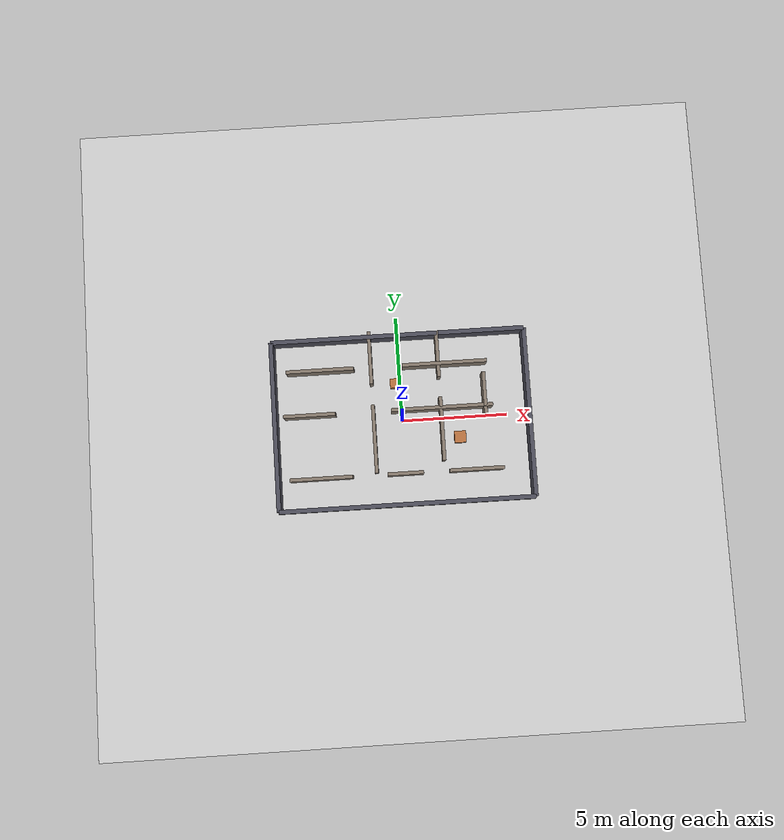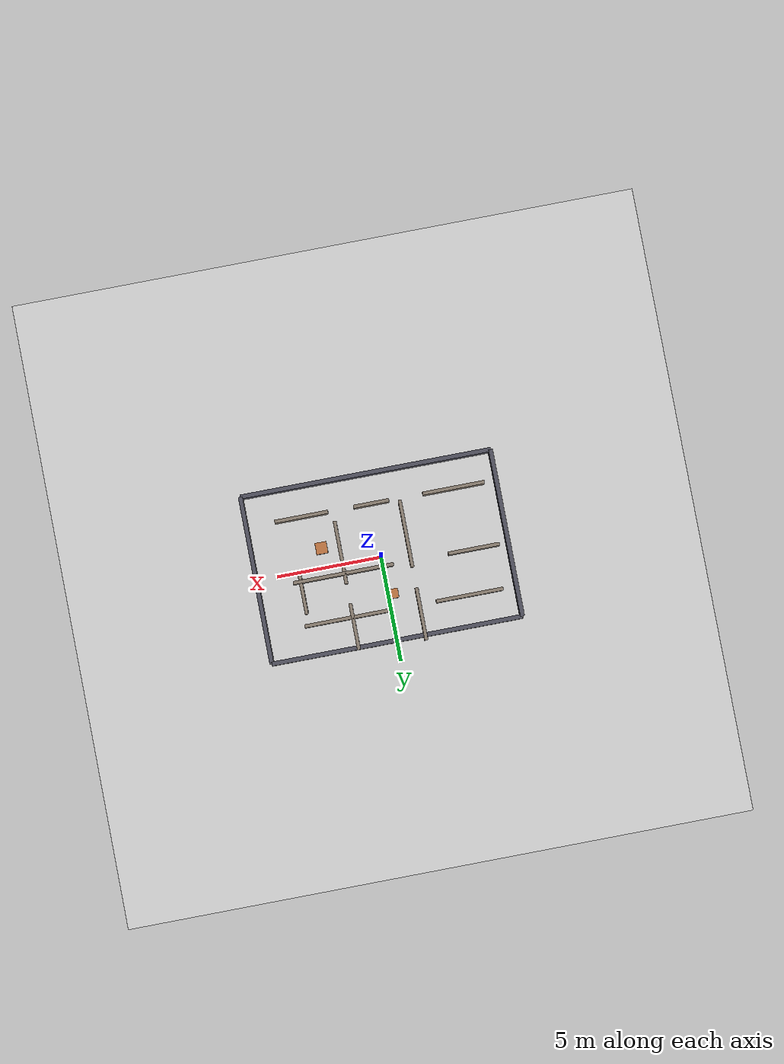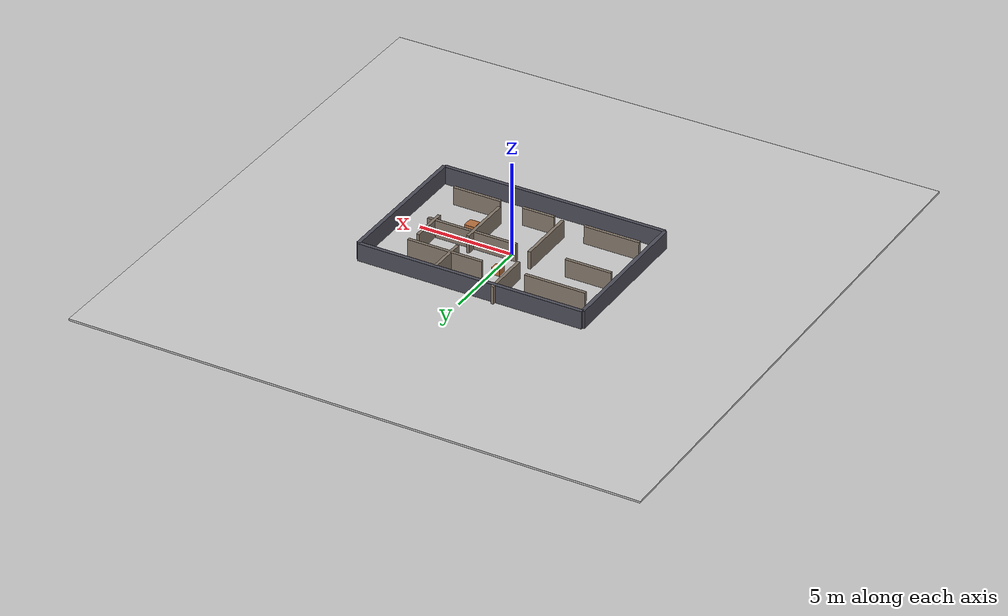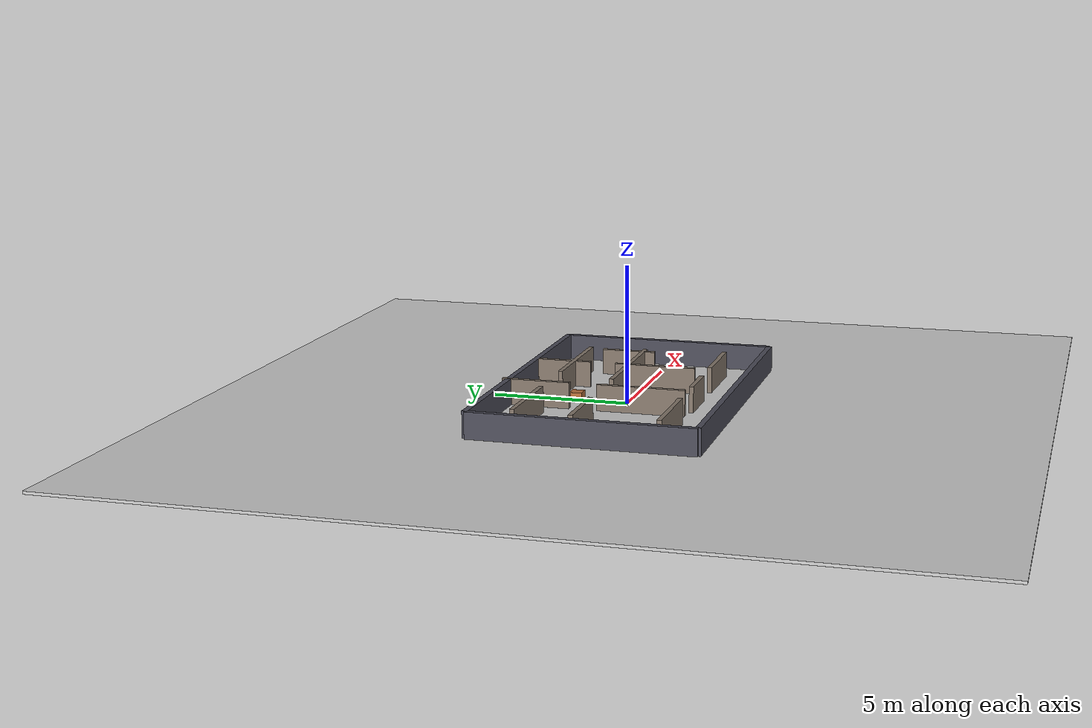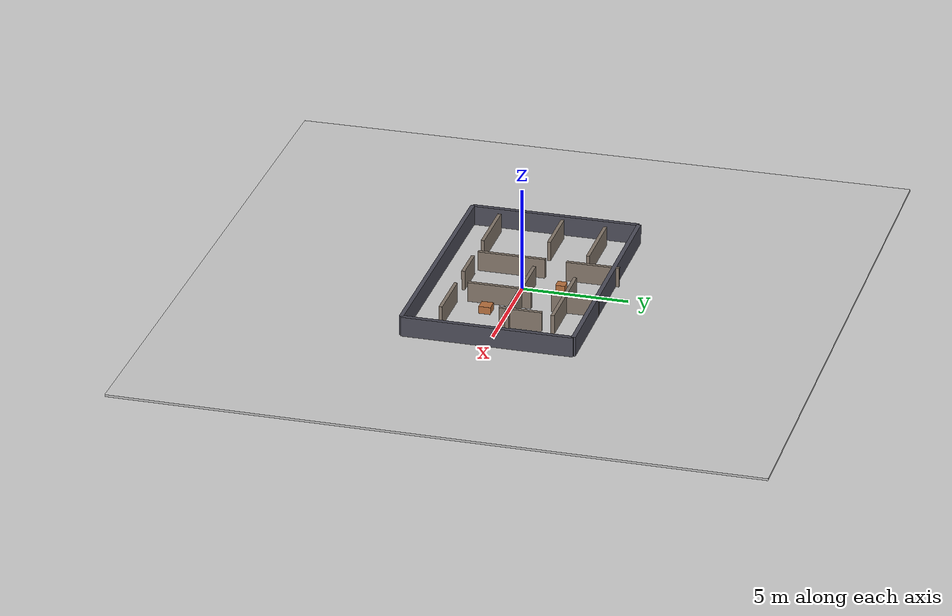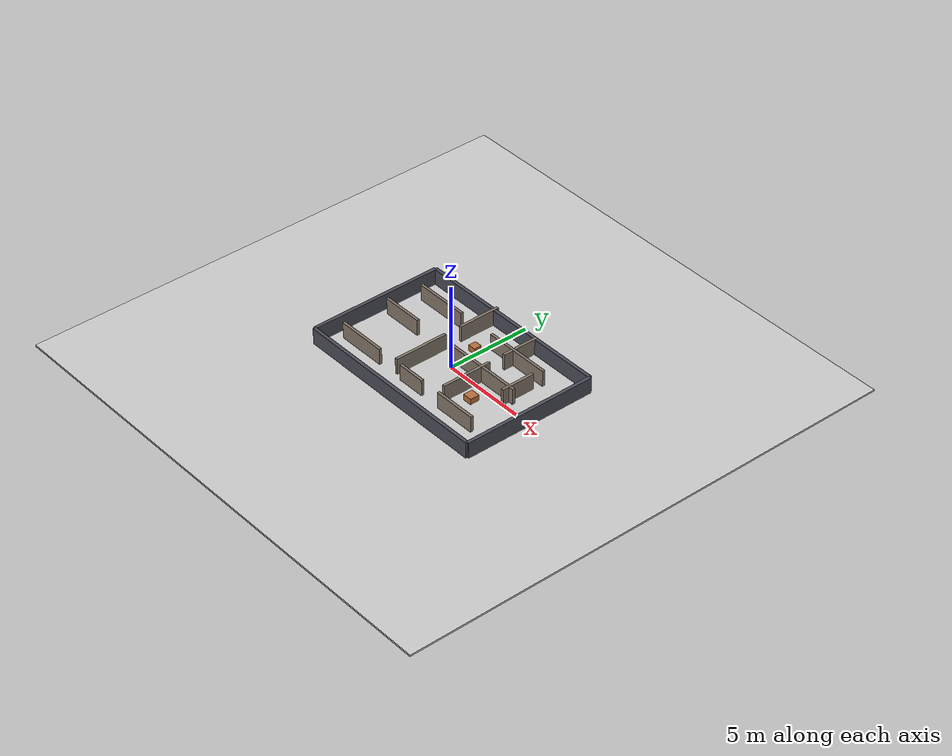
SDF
<?xml version='1.0'?>
<sdf version='1.9'>
  <world name='roboworks_world'>
    <physics name='default_physics' type='ode'>
      <max_step_size>0.001</max_step_size>
      <real_time_factor>1.0</real_time_factor>
      <real_time_update_rate>1000</real_time_update_rate>
    </physics>

    <plugin filename='gz-sim-physics-system' name='gz::sim::systems::Physics'/>
    <plugin filename='gz-sim-user-commands-system' name='gz::sim::systems::UserCommands'/>
    <plugin filename='gz-sim-sensors-system' name='gz::sim::systems::Sensors'/>
    <plugin filename='gz-sim-imu-system' name='gz::sim::systems::Imu'/>
    <plugin filename='gz-sim-scene-broadcaster-system' name='gz::sim::systems::SceneBroadcaster'/>

    <light name='sun' type='directional'>
      <pose>0 0 10 0 0 0</pose>
      <cast_shadows>true</cast_shadows>
      <diffuse>0.9 0.9 0.9 1</diffuse>
      <specular>0.2 0.2 0.2 1</specular>
      <direction>-0.5 0.1 -1</direction>
    </light>

    <model name='ground_plane'>
      <static>true</static>
      <link name='ground_link'>
        <collision name='ground_collision'>
          <geometry>
            <box><size>30 30 0.1</size></box>
          </geometry>
          <surface>
            <friction>
              <ode>
                <mu>1.0</mu>
                <mu2>1.0</mu2>
              </ode>
            </friction>
          </surface>
        </collision>
        <visual name='ground_visual'>
          <geometry>
            <box><size>30 30 0.1</size></box>
          </geometry>
          <material>
            <ambient>0.8 0.8 0.8 1</ambient>
            <diffuse>0.8 0.8 0.8 1</diffuse>
          </material>
        </visual>
      </link>
    </model>

    <model name='wall_left'>
      <static>true</static>
      <pose>0 4 0.5 0 0 0</pose>
      <link name='link'>
        <collision name='collision'>
          <geometry><box><size>12 0.2 1.0</size></box></geometry>
        </collision>
        <visual name='visual'>
          <geometry><box><size>12 0.2 1.0</size></box></geometry>
          <material><ambient>0.3 0.3 0.35 1</ambient></material>
        </visual>
      </link>
    </model>

    <model name='wall_right'>
      <static>true</static>
      <pose>0 -4 0.5 0 0 0</pose>
      <link name='link'>
        <collision name='collision'>
          <geometry><box><size>12 0.2 1.0</size></box></geometry>
        </collision>
        <visual name='visual'>
          <geometry><box><size>12 0.2 1.0</size></box></geometry>
          <material><ambient>0.3 0.3 0.35 1</ambient></material>
        </visual>
      </link>
    </model>

    <model name='wall_front'>
      <static>true</static>
      <pose>6 0 0.5 0 0 0</pose>
      <link name='link'>
        <collision name='collision'>
          <geometry><box><size>0.2 8 1.0</size></box></geometry>
        </collision>
        <visual name='visual'>
          <geometry><box><size>0.2 8 1.0</size></box></geometry>
          <material><ambient>0.3 0.3 0.35 1</ambient></material>
        </visual>
      </link>
    </model>

    <model name='wall_back'>
      <static>true</static>
      <pose>-6 0 0.5 0 0 0</pose>
      <link name='link'>
        <collision name='collision'>
          <geometry><box><size>0.2 8 1.0</size></box></geometry>
        </collision>
        <visual name='visual'>
          <geometry><box><size>0.2 8 1.0</size></box></geometry>
          <material><ambient>0.3 0.3 0.35 1</ambient></material>
        </visual>
      </link>
    </model>

    <model name='inner_wall_north_left'>
      <static>true</static>
      <pose>-3.75 2.55 0.5 0 0 0</pose>
      <link name='link'>
        <collision name='collision'>
          <geometry><box><size>3.2 0.16 1.0</size></box></geometry>
        </collision>
        <visual name='visual'>
          <geometry><box><size>3.2 0.16 1.0</size></box></geometry>
          <material><ambient>0.52 0.47 0.42 1</ambient></material>
        </visual>
      </link>
    </model>

    <model name='inner_wall_north_right'>
      <static>true</static>
      <pose>2.15 2.55 0.5 0 0 0</pose>
      <link name='link'>
        <collision name='collision'>
          <geometry><box><size>4.0 0.16 1.0</size></box></geometry>
        </collision>
        <visual name='visual'>
          <geometry><box><size>4.0 0.16 1.0</size></box></geometry>
          <material><ambient>0.52 0.47 0.42 1</ambient></material>
        </visual>
      </link>
    </model>

    <model name='inner_wall_mid_left'>
      <static>true</static>
      <pose>-4.35 0.45 0.5 0 0 0</pose>
      <link name='link'>
        <collision name='collision'>
          <geometry><box><size>2.45 0.16 1.0</size></box></geometry>
        </collision>
        <visual name='visual'>
          <geometry><box><size>2.45 0.16 1.0</size></box></geometry>
          <material><ambient>0.52 0.47 0.42 1</ambient></material>
        </visual>
      </link>
    </model>

    <model name='inner_wall_mid_right'>
      <static>true</static>
      <pose>1.9 0.45 0.5 0 0 0</pose>
      <link name='link'>
        <collision name='collision'>
          <geometry><box><size>4.8 0.16 1.0</size></box></geometry>
        </collision>
        <visual name='visual'>
          <geometry><box><size>4.8 0.16 1.0</size></box></geometry>
          <material><ambient>0.52 0.47 0.42 1</ambient></material>
        </visual>
      </link>
    </model>

    <model name='inner_wall_south_left'>
      <static>true</static>
      <pose>-3.95 -2.55 0.5 0 0 0</pose>
      <link name='link'>
        <collision name='collision'>
          <geometry><box><size>2.95 0.16 1.0</size></box></geometry>
        </collision>
        <visual name='visual'>
          <geometry><box><size>2.95 0.16 1.0</size></box></geometry>
          <material><ambient>0.52 0.47 0.42 1</ambient></material>
        </visual>
      </link>
    </model>

    <model name='inner_wall_south_center'>
      <static>true</static>
      <pose>0.0 -2.55 0.5 0 0 0</pose>
      <link name='link'>
        <collision name='collision'>
          <geometry><box><size>1.7 0.16 1.0</size></box></geometry>
        </collision>
        <visual name='visual'>
          <geometry><box><size>1.7 0.16 1.0</size></box></geometry>
          <material><ambient>0.52 0.47 0.42 1</ambient></material>
        </visual>
      </link>
    </model>

    <model name='inner_wall_south_right'>
      <static>true</static>
      <pose>3.35 -2.55 0.5 0 0 0</pose>
      <link name='link'>
        <collision name='collision'>
          <geometry><box><size>2.55 0.16 1.0</size></box></geometry>
        </collision>
        <visual name='visual'>
          <geometry><box><size>2.55 0.16 1.0</size></box></geometry>
          <material><ambient>0.52 0.47 0.42 1</ambient></material>
        </visual>
      </link>
    </model>

    <model name='inner_wall_vertical_left_top'>
      <static>true</static>
      <pose>-1.35 3.0 0.5 0 0 1.57079632679</pose>
      <link name='link'>
        <collision name='collision'>
          <geometry><box><size>2.5 0.16 1.0</size></box></geometry>
        </collision>
        <visual name='visual'>
          <geometry><box><size>2.5 0.16 1.0</size></box></geometry>
          <material><ambient>0.52 0.47 0.42 1</ambient></material>
        </visual>
      </link>
    </model>

    <model name='inner_wall_vertical_left_bottom'>
      <static>true</static>
      <pose>-1.35 -0.85 0.5 0 0 1.57079632679</pose>
      <link name='link'>
        <collision name='collision'>
          <geometry><box><size>3.2 0.16 1.0</size></box></geometry>
        </collision>
        <visual name='visual'>
          <geometry><box><size>3.2 0.16 1.0</size></box></geometry>
          <material><ambient>0.52 0.47 0.42 1</ambient></material>
        </visual>
      </link>
    </model>

    <model name='inner_wall_vertical_right_top'>
      <static>true</static>
      <pose>1.85 3.0 0.5 0 0 1.57079632679</pose>
      <link name='link'>
        <collision name='collision'>
          <geometry><box><size>2.2 0.16 1.0</size></box></geometry>
        </collision>
        <visual name='visual'>
          <geometry><box><size>2.2 0.16 1.0</size></box></geometry>
          <material><ambient>0.52 0.47 0.42 1</ambient></material>
        </visual>
      </link>
    </model>

    <model name='inner_wall_vertical_right_bottom'>
      <static>true</static>
      <pose>1.85 -0.55 0.5 0 0 1.57079632679</pose>
      <link name='link'>
        <collision name='collision'>
          <geometry><box><size>3.0 0.16 1.0</size></box></geometry>
        </collision>
        <visual name='visual'>
          <geometry><box><size>3.0 0.16 1.0</size></box></geometry>
          <material><ambient>0.52 0.47 0.42 1</ambient></material>
        </visual>
      </link>
    </model>

    <model name='inner_wall_vertical_far_right'>
      <static>true</static>
      <pose>3.95 1.0 0.5 0 0 1.57079632679</pose>
      <link name='link'>
        <collision name='collision'>
          <geometry><box><size>2.0 0.16 1.0</size></box></geometry>
        </collision>
        <visual name='visual'>
          <geometry><box><size>2.0 0.16 1.0</size></box></geometry>
          <material><ambient>0.52 0.47 0.42 1</ambient></material>
        </visual>
      </link>
    </model>

    <model name='inner_pillar_north'>
      <static>true</static>
      <pose>-0.25 1.8 0.2 0 0 0</pose>
      <link name='link'>
        <collision name='collision'>
          <geometry><box><size>0.45 0.45 0.4</size></box></geometry>
        </collision>
        <visual name='visual'>
          <geometry><box><size>0.45 0.45 0.4</size></box></geometry>
          <material><ambient>0.72 0.44 0.24 1</ambient></material>
        </visual>
      </link>
    </model>

    <model name='inner_pillar_south'>
      <static>true</static>
      <pose>2.7 -0.95 0.2 0 0 0</pose>
      <link name='link'>
        <collision name='collision'>
          <geometry><box><size>0.55 0.55 0.4</size></box></geometry>
        </collision>
        <visual name='visual'>
          <geometry><box><size>0.55 0.55 0.4</size></box></geometry>
          <material><ambient>0.72 0.44 0.24 1</ambient></material>
        </visual>
      </link>
    </model>
  </world>
</sdf>
